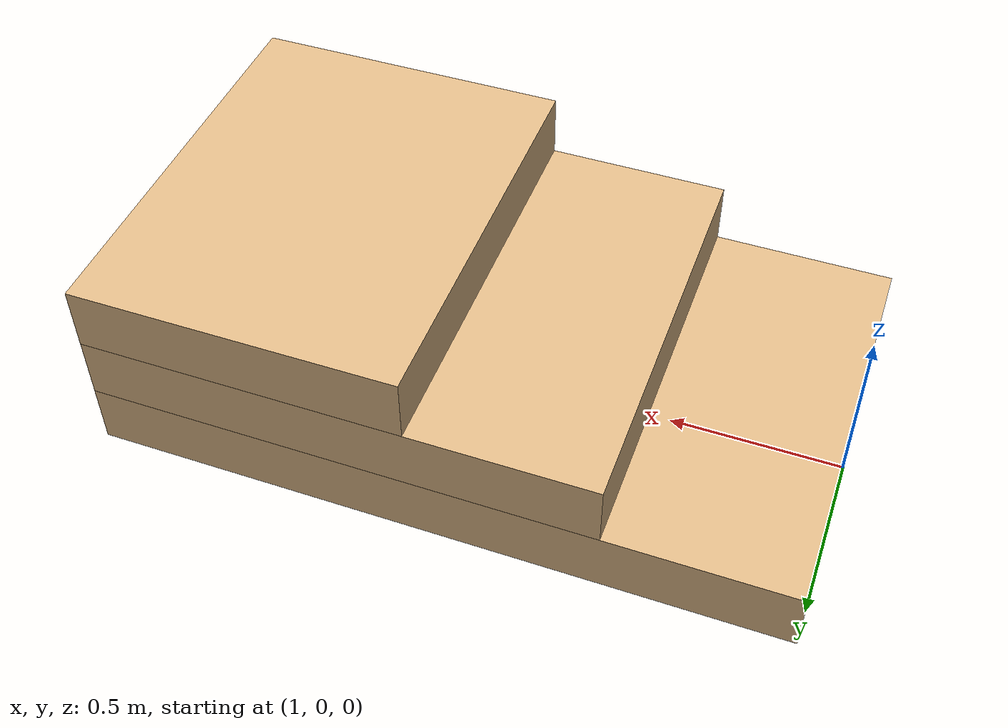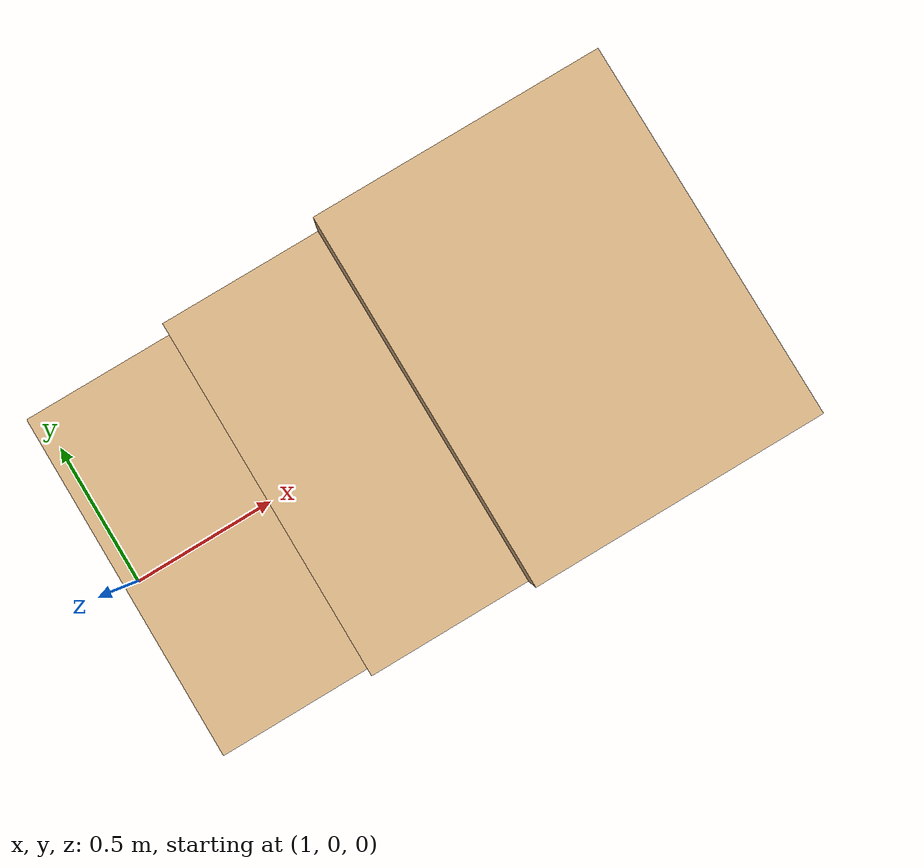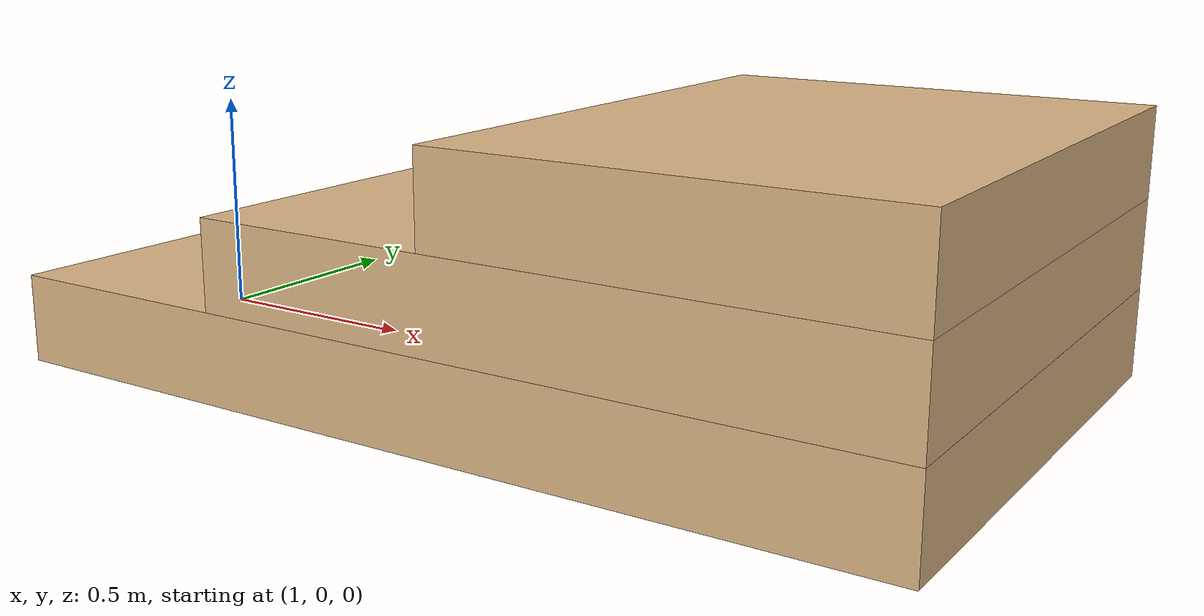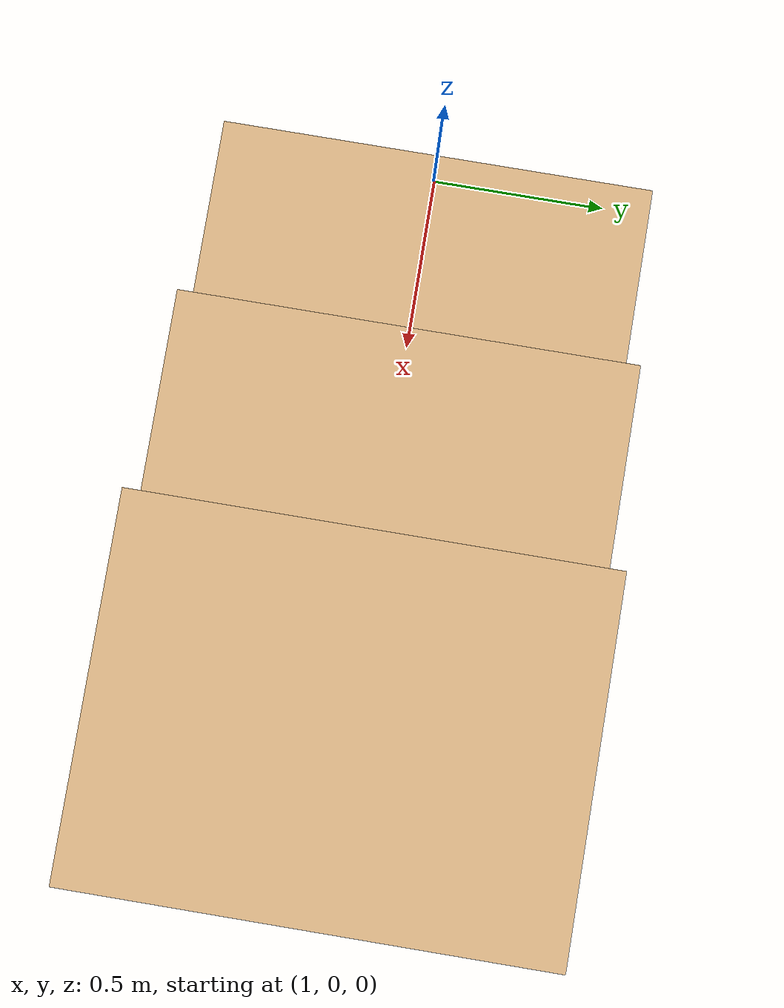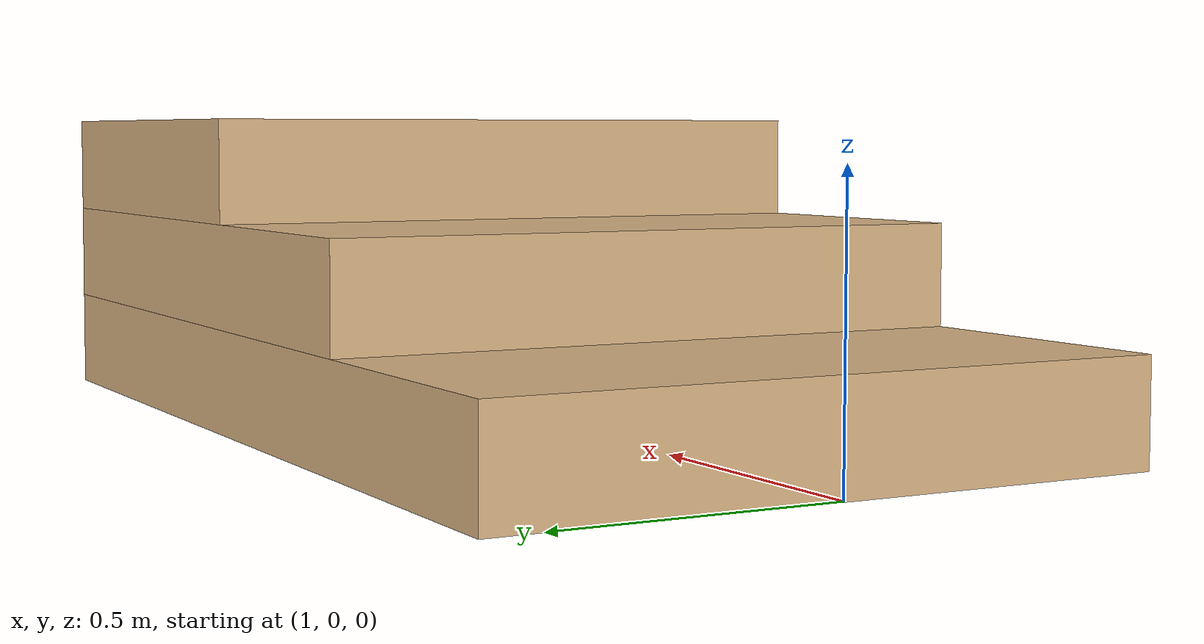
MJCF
<mujoco model="stairs">
    <asset>
        <material name="box_material" shininess="0.1" specular="0.5" roughness="0.3" />
    </asset>

    <worldbody>
        <body name="stair_1" pos="2 0 0.095">
          <geom type="box" contype="4" conaffinity="1" size="1 0.6 0.095" friction="0.5" material="box_material" rgba="0.87 0.72 0.53 1.0"/>
        </body>
        <body name="stair_2" pos="2.2667 0 0.285">
          <geom type="box" contype="4" conaffinity="1" size="0.733 0.6 0.095" friction="0.5" material="box_material" rgba="0.87 0.72 0.53 1.0"/>
        </body>
        <body name="stair_3" pos="2.5334 0 0.475">
          <geom type="box" contype="4" conaffinity="1" size="0.4666 0.6 0.095" friction="0.5" material="box_material" rgba="0.87 0.72 0.53 1.0"/>
        </body>
    </worldbody>
</mujoco>
